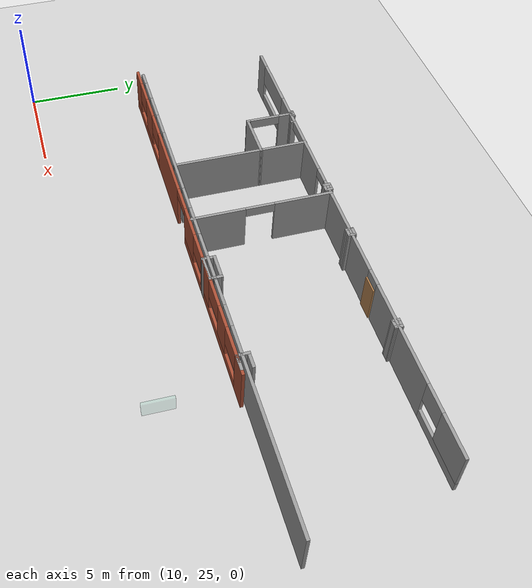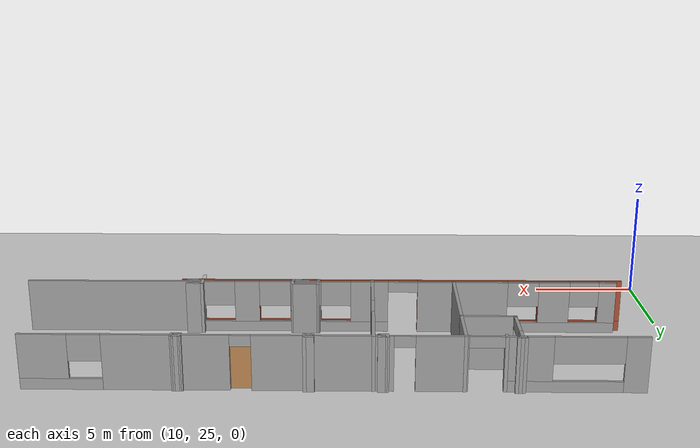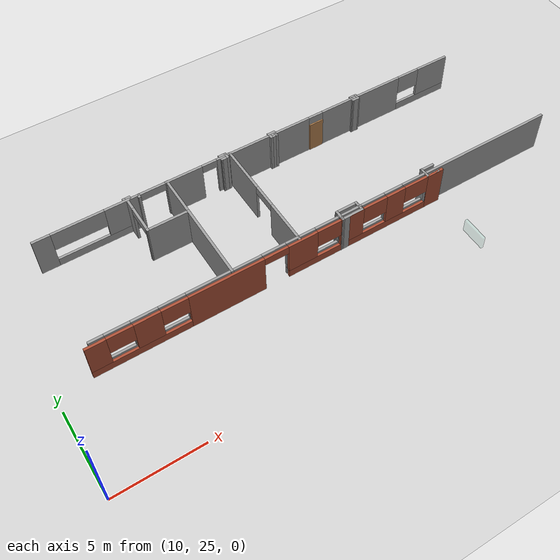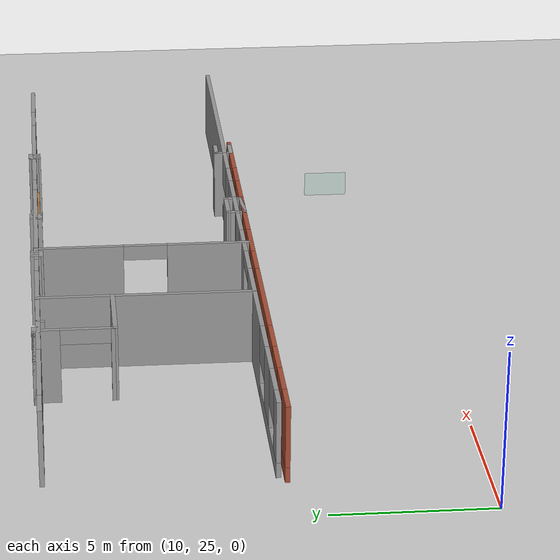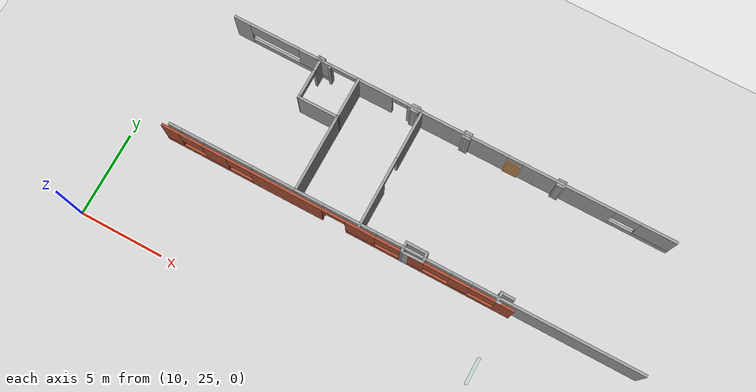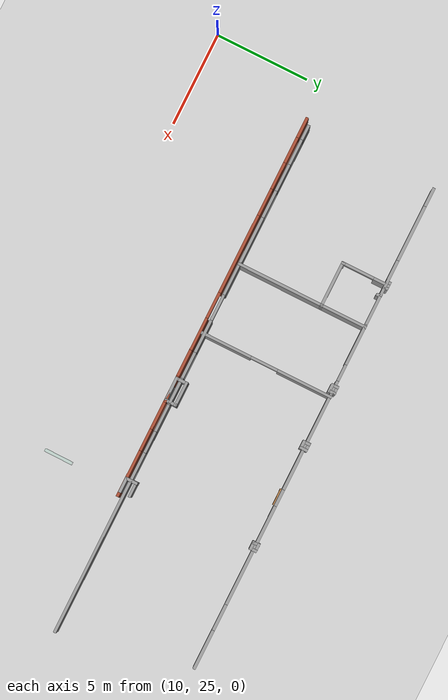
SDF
<sdf version="1.6">
 <world name="default">
  <model name="ground_plane">
   <static>1</static>
   <link name="link">
    <collision name="collision">
     <geometry><plane><normal>0 0 1</normal><size>100 100</size></plane></geometry>
     <surface><friction><ode><mu>100</mu><mu2>50</mu2></ode></friction></surface>
    </collision>
    <visual name="visual">
     <cast_shadows>0</cast_shadows>
     <geometry><plane><normal>0 0 1</normal><size>100 100</size></plane></geometry>
     <material>
      <script><uri>file://media/materials/scripts/gazebo.material</uri><name>Gazebo/Grey</name></script>
     </material>
    </visual>
   </link>
  </model>
  <model name="CVSSP">
   <pose>23.8714 24.094 0 0 -0 0</pose>
   <link name="Wall_0">
    <pose>1.68767 14.035 0 0 -0 0</pose>
    <visual name="Wall_0_Visual_0">
     <pose>-12.7386 0 1.25 0 -0 0</pose>
     <geometry><box><size>1.02282 0.15 2.5</size></box></geometry>
     <material>
      <script><uri>file://media/materials/scripts/gazebo.material</uri><name>Gazebo/Grey</name></script>
      <ambient>0.588235 0.588235 0.588235 1</ambient>
     </material>
    </visual>
    <collision name="Wall_0_Collision_0">
     <geometry><box><size>1.02282 0.15 2.5</size></box></geometry>
     <pose>-12.7386 0 1.25 0 -0 0</pose>
    </collision>
    <visual name="Wall_0_Visual_1">
     <pose>-4.58044 0 1.25 0 -0 0</pose>
     <geometry><box><size>2.22198 0.15 2.5</size></box></geometry>
     <material>
      <script><uri>file://media/materials/scripts/gazebo.material</uri><name>Gazebo/Grey</name></script>
      <ambient>0.588235 0.588235 0.588235 1</ambient>
     </material>
    </visual>
    <collision name="Wall_0_Collision_1">
     <geometry><box><size>2.22198 0.15 2.5</size></box></geometry>
     <pose>-4.58044 0 1.25 0 -0 0</pose>
    </collision>
    <visual name="Wall_0_Visual_2">
     <pose>0.426093 0 1.25 0 -0 0</pose>
     <geometry><box><size>5.99108 0.15 2.5</size></box></geometry>
     <material>
      <script><uri>file://media/materials/scripts/gazebo.material</uri><name>Gazebo/Grey</name></script>
      <ambient>0.588235 0.588235 0.588235 1</ambient>
     </material>
    </visual>
    <collision name="Wall_0_Collision_2">
     <geometry><box><size>5.99108 0.15 2.5</size></box></geometry>
     <pose>0.426093 0 1.25 0 -0 0</pose>
    </collision>
    <visual name="Wall_0_Visual_3">
     <pose>7.01875 0 1.25 0 -0 0</pose>
     <geometry><box><size>5.39422 0.15 2.5</size></box></geometry>
     <material>
      <script><uri>file://media/materials/scripts/gazebo.material</uri><name>Gazebo/Grey</name></script>
      <ambient>0.588235 0.588235 0.588235 1</ambient>
     </material>
    </visual>
    <collision name="Wall_0_Collision_3">
     <geometry><box><size>5.39422 0.15 2.5</size></box></geometry>
     <pose>7.01875 0 1.25 0 -0 0</pose>
    </collision>
    <visual name="Wall_0_Visual_4">
     <pose>-9.74161 0 0.25 0 -0 0</pose>
     <geometry><box><size>4.97113 0.15 0.5</size></box></geometry>
     <material>
      <script><uri>file://media/materials/scripts/gazebo.material</uri><name>Gazebo/Grey</name></script>
      <ambient>0.588235 0.588235 0.588235 1</ambient>
     </material>
    </visual>
    <collision name="Wall_0_Collision_4">
     <geometry><box><size>4.97113 0.15 0.5</size></box></geometry>
     <pose>-9.74161 0 0.25 0 -0 0</pose>
    </collision>
    <visual name="Wall_0_Visual_5">
     <pose>11.4829 0 0.25 0 -0 0</pose>
     <geometry><box><size>3.53415 0.15 0.5</size></box></geometry>
     <material>
      <script><uri>file://media/materials/scripts/gazebo.material</uri><name>Gazebo/Grey</name></script>
      <ambient>0.588235 0.588235 0.588235 1</ambient>
     </material>
    </visual>
    <collision name="Wall_0_Collision_5">
     <geometry><box><size>3.53415 0.15 0.5</size></box></geometry>
     <pose>11.4829 0 0.25 0 -0 0</pose>
    </collision>
    <visual name="Wall_0_Visual_6">
     <pose>-8.24385 0 1.5 0 -0 0</pose>
     <geometry><box><size>1.9756 0.15 2</size></box></geometry>
     <material>
      <script><uri>file://media/materials/scripts/gazebo.material</uri><name>Gazebo/Grey</name></script>
      <ambient>0.588235 0.588235 0.588235 1</ambient>
     </material>
    </visual>
    <collision name="Wall_0_Collision_6">
     <geometry><box><size>1.9756 0.15 2</size></box></geometry>
     <pose>-8.24385 0 1.5 0 -0 0</pose>
    </collision>
    <visual name="Wall_0_Visual_7">
     <pose>-8.24385 0 1.5 0 -0 0</pose>
     <geometry><box><size>1.9756 0.15 2</size></box></geometry>
     <material>
      <script><uri>file://media/materials/scripts/gazebo.material</uri><name>Gazebo/Grey</name></script>
      <ambient>0.588235 0.588235 0.588235 1</ambient>
     </material>
    </visual>
    <collision name="Wall_0_Collision_7">
     <geometry><box><size>1.9756 0.15 2</size></box></geometry>
     <pose>-8.24385 0 1.5 0 -0 0</pose>
    </collision>
    <visual name="Wall_0_Visual_8">
     <pose>12.1924 0 1.5 0 -0 0</pose>
     <geometry><box><size>2.11511 0.15 2</size></box></geometry>
     <material>
      <script><uri>file://media/materials/scripts/gazebo.material</uri><name>Gazebo/Grey</name></script>
      <ambient>0.588235 0.588235 0.588235 1</ambient>
     </material>
    </visual>
    <collision name="Wall_0_Collision_8">
     <geometry><box><size>2.11511 0.15 2</size></box></geometry>
     <pose>12.1924 0 1.5 0 -0 0</pose>
    </collision>
    <visual name="Wall_0_Visual_9">
     <pose>-10.7294 0 1.9 0 -0 0</pose>
     <geometry><box><size>2.99553 0.15 1.2</size></box></geometry>
     <material>
      <script><uri>file://media/materials/scripts/gazebo.material</uri><name>Gazebo/Grey</name></script>
      <ambient>0.588235 0.588235 0.588235 1</ambient>
     </material>
    </visual>
    <collision name="Wall_0_Collision_9">
     <geometry><box><size>2.99553 0.15 1.2</size></box></geometry>
     <pose>-10.7294 0 1.9 0 -0 0</pose>
    </collision>
    <visual name="Wall_0_Visual_10">
     <pose>10.4254 0 1.9 0 -0 0</pose>
     <geometry><box><size>1.41904 0.15 1.2</size></box></geometry>
     <material>
      <script><uri>file://media/materials/scripts/gazebo.material</uri><name>Gazebo/Grey</name></script>
      <ambient>0.588235 0.588235 0.588235 1</ambient>
     </material>
    </visual>
    <collision name="Wall_0_Collision_10">
     <geometry><box><size>1.41904 0.15 1.2</size></box></geometry>
     <pose>10.4254 0 1.9 0 -0 0</pose>
    </collision>
    <visual name="Wall_0_Visual_11">
     <pose>-3.01945 0 2.25 0 -0 0</pose>
     <geometry><box><size>0.9 0.15 0.5</size></box></geometry>
     <material>
      <script><uri>file://media/materials/scripts/gazebo.material</uri><name>Gazebo/Grey</name></script>
      <ambient>0.588235 0.588235 0.588235 1</ambient>
     </material>
    </visual>
    <collision name="Wall_0_Collision_11">
     <geometry><box><size>0.9 0.15 0.5</size></box></geometry>
     <pose>-3.01945 0 2.25 0 -0 0</pose>
    </collision>
    <visual name="Wall_0_Visual_12">
     <pose>3.87163 0 2.25 0 -0 0</pose>
     <geometry><box><size>0.9 0.15 0.5</size></box></geometry>
     <material>
      <script><uri>file://media/materials/scripts/gazebo.material</uri><name>Gazebo/Grey</name></script>
      <ambient>0.588235 0.588235 0.588235 1</ambient>
     </material>
    </visual>
    <collision name="Wall_0_Collision_12">
     <geometry><box><size>0.9 0.15 0.5</size></box></geometry>
     <pose>3.87163 0 2.25 0 -0 0</pose>
    </collision>
    <visual name="Wall_0_Visual_13">
     <pose>-6.47374 0 2.25 0 -0 0</pose>
     <geometry><box><size>1.56462 0.15 0.5</size></box></geometry>
     <material>
      <script><uri>file://media/materials/scripts/gazebo.material</uri><name>Gazebo/Grey</name></script>
      <ambient>0.588235 0.588235 0.588235 1</ambient>
     </material>
    </visual>
    <collision name="Wall_0_Collision_13">
     <geometry><box><size>1.56462 0.15 0.5</size></box></geometry>
     <pose>-6.47374 0 2.25 0 -0 0</pose>
    </collision>
    <visual name="Wall_0_Visual_14">
     <pose>-6.47374 0 2.25 0 -0 0</pose>
     <geometry><box><size>1.56462 0.15 0.5</size></box></geometry>
     <material>
      <script><uri>file://media/materials/scripts/gazebo.material</uri><name>Gazebo/Grey</name></script>
      <ambient>0.588235 0.588235 0.588235 1</ambient>
     </material>
    </visual>
    <collision name="Wall_0_Collision_14">
     <geometry><box><size>1.56462 0.15 0.5</size></box></geometry>
     <pose>-6.47374 0 2.25 0 -0 0</pose>
    </collision>
   </link>
   <link name="Wall_19">
    <pose>2.41083 7.10891 0 0 -0 3.14159</pose>
    <visual name="Wall_19_Visual_0">
     <pose>-9.80896 0 1.25 0 -0 0</pose>
     <geometry><box><size>8.38208 0.15 2.5</size></box></geometry>
     <material>
      <script><uri>file://media/materials/scripts/gazebo.material</uri><name>Gazebo/Grey</name></script>
      <ambient>0.588235 0.588235 0.588235 1</ambient>
     </material>
    </visual>
    <collision name="Wall_19_Collision_0">
     <geometry><box><size>8.38208 0.15 2.5</size></box></geometry>
     <pose>-9.80896 0 1.25 0 -0 0</pose>
    </collision>
    <visual name="Wall_19_Visual_1">
     <pose>6.72902 0 1.25 0 -0 0</pose>
     <geometry><box><size>4.28675 0.15 2.5</size></box></geometry>
     <material>
      <script><uri>file://media/materials/scripts/gazebo.material</uri><name>Gazebo/Grey</name></script>
      <ambient>0.588235 0.588235 0.588235 1</ambient>
     </material>
    </visual>
    <collision name="Wall_19_Collision_1">
     <geometry><box><size>4.28675 0.15 2.5</size></box></geometry>
     <pose>6.72902 0 1.25 0 -0 0</pose>
    </collision>
    <visual name="Wall_19_Visual_2">
     <pose>-1.21771 0 0.25 0 -0 0</pose>
     <geometry><box><size>8.80043 0.15 0.5</size></box></geometry>
     <material>
      <script><uri>file://media/materials/scripts/gazebo.material</uri><name>Gazebo/Grey</name></script>
      <ambient>0.588235 0.588235 0.588235 1</ambient>
     </material>
    </visual>
    <collision name="Wall_19_Collision_2">
     <geometry><box><size>8.80043 0.15 0.5</size></box></geometry>
     <pose>-1.21771 0 0.25 0 -0 0</pose>
    </collision>
    <visual name="Wall_19_Visual_3">
     <pose>11.4362 0 0.25 0 -0 0</pose>
     <geometry><box><size>5.1276 0.15 0.5</size></box></geometry>
     <material>
      <script><uri>file://media/materials/scripts/gazebo.material</uri><name>Gazebo/Grey</name></script>
      <ambient>0.588235 0.588235 0.588235 1</ambient>
     </material>
    </visual>
    <collision name="Wall_19_Collision_3">
     <geometry><box><size>5.1276 0.15 0.5</size></box></geometry>
     <pose>11.4362 0 0.25 0 -0 0</pose>
    </collision>
    <visual name="Wall_19_Visual_4">
     <pose>-3.53944 0 1.5 0 -0 0</pose>
     <geometry><box><size>1.17771 0.15 2</size></box></geometry>
     <material>
      <script><uri>file://media/materials/scripts/gazebo.material</uri><name>Gazebo/Grey</name></script>
      <ambient>0.588235 0.588235 0.588235 1</ambient>
     </material>
    </visual>
    <collision name="Wall_19_Collision_4">
     <geometry><box><size>1.17771 0.15 2</size></box></geometry>
     <pose>-3.53944 0 1.5 0 -0 0</pose>
    </collision>
    <visual name="Wall_19_Visual_5">
     <pose>-0.741003 0 1.5 0 -0 0</pose>
     <geometry><box><size>1.46268 0.15 2</size></box></geometry>
     <material>
      <script><uri>file://media/materials/scripts/gazebo.material</uri><name>Gazebo/Grey</name></script>
      <ambient>0.588235 0.588235 0.588235 1</ambient>
     </material>
    </visual>
    <collision name="Wall_19_Collision_5">
     <geometry><box><size>1.46268 0.15 2</size></box></geometry>
     <pose>-0.741003 0 1.5 0 -0 0</pose>
    </collision>
    <visual name="Wall_19_Visual_6">
     <pose>2.29704 0 1.5 0 -0 0</pose>
     <geometry><box><size>1.77092 0.15 2</size></box></geometry>
     <material>
      <script><uri>file://media/materials/scripts/gazebo.material</uri><name>Gazebo/Grey</name></script>
      <ambient>0.588235 0.588235 0.588235 1</ambient>
     </material>
    </visual>
    <collision name="Wall_19_Collision_6">
     <geometry><box><size>1.77092 0.15 2</size></box></geometry>
     <pose>2.29704 0 1.5 0 -0 0</pose>
    </collision>
    <visual name="Wall_19_Visual_7">
     <pose>2.29704 0 1.5 0 -0 0</pose>
     <geometry><box><size>1.77092 0.15 2</size></box></geometry>
     <material>
      <script><uri>file://media/materials/scripts/gazebo.material</uri><name>Gazebo/Grey</name></script>
      <ambient>0.588235 0.588235 0.588235 1</ambient>
     </material>
    </visual>
    <collision name="Wall_19_Collision_7">
     <geometry><box><size>1.77092 0.15 2</size></box></geometry>
     <pose>2.29704 0 1.5 0 -0 0</pose>
    </collision>
    <visual name="Wall_19_Visual_8">
     <pose>11.0786 0 1.5 0 -0 0</pose>
     <geometry><box><size>1.46509 0.15 2</size></box></geometry>
     <material>
      <script><uri>file://media/materials/scripts/gazebo.material</uri><name>Gazebo/Grey</name></script>
      <ambient>0.588235 0.588235 0.588235 1</ambient>
     </material>
    </visual>
    <collision name="Wall_19_Collision_8">
     <geometry><box><size>1.46509 0.15 2</size></box></geometry>
     <pose>11.0786 0 1.5 0 -0 0</pose>
    </collision>
    <visual name="Wall_19_Visual_9">
     <pose>13.5916 0 1.5 0 -0 0</pose>
     <geometry><box><size>0.816793 0.15 2</size></box></geometry>
     <material>
      <script><uri>file://media/materials/scripts/gazebo.material</uri><name>Gazebo/Grey</name></script>
      <ambient>0.588235 0.588235 0.588235 1</ambient>
     </material>
    </visual>
    <collision name="Wall_19_Collision_9">
     <geometry><box><size>0.816793 0.15 2</size></box></geometry>
     <pose>13.5916 0 1.5 0 -0 0</pose>
    </collision>
    <visual name="Wall_19_Visual_10">
     <pose>-4.87311 0 1.9 0 -0 0</pose>
     <geometry><box><size>1.48963 0.15 1.2</size></box></geometry>
     <material>
      <script><uri>file://media/materials/scripts/gazebo.material</uri><name>Gazebo/Grey</name></script>
      <ambient>0.588235 0.588235 0.588235 1</ambient>
     </material>
    </visual>
    <collision name="Wall_19_Collision_10">
     <geometry><box><size>1.48963 0.15 1.2</size></box></geometry>
     <pose>-4.87311 0 1.9 0 -0 0</pose>
    </collision>
    <visual name="Wall_19_Visual_11">
     <pose>9.60921 0 1.9 0 -0 0</pose>
     <geometry><box><size>1.47362 0.15 1.2</size></box></geometry>
     <material>
      <script><uri>file://media/materials/scripts/gazebo.material</uri><name>Gazebo/Grey</name></script>
      <ambient>0.588235 0.588235 0.588235 1</ambient>
     </material>
    </visual>
    <collision name="Wall_19_Collision_11">
     <geometry><box><size>1.47362 0.15 1.2</size></box></geometry>
     <pose>9.60921 0 1.9 0 -0 0</pose>
    </collision>
    <visual name="Wall_19_Visual_12">
     <pose>-2.21146 0 1.9 0 -0 0</pose>
     <geometry><box><size>1.47823 0.15 1.2</size></box></geometry>
     <material>
      <script><uri>file://media/materials/scripts/gazebo.material</uri><name>Gazebo/Grey</name></script>
      <ambient>0.588235 0.588235 0.588235 1</ambient>
     </material>
    </visual>
    <collision name="Wall_19_Collision_12">
     <geometry><box><size>1.47823 0.15 1.2</size></box></geometry>
     <pose>-2.21146 0 1.9 0 -0 0</pose>
    </collision>
    <visual name="Wall_19_Visual_13">
     <pose>0.700959 0 1.9 0 -0 0</pose>
     <geometry><box><size>1.42124 0.15 1.2</size></box></geometry>
     <material>
      <script><uri>file://media/materials/scripts/gazebo.material</uri><name>Gazebo/Grey</name></script>
      <ambient>0.588235 0.588235 0.588235 1</ambient>
     </material>
    </visual>
    <collision name="Wall_19_Collision_13">
     <geometry><box><size>1.42124 0.15 1.2</size></box></geometry>
     <pose>0.700959 0 1.9 0 -0 0</pose>
    </collision>
    <visual name="Wall_19_Visual_14">
     <pose>12.4972 0 1.9 0 -0 0</pose>
     <geometry><box><size>1.3721 0.15 1.2</size></box></geometry>
     <material>
      <script><uri>file://media/materials/scripts/gazebo.material</uri><name>Gazebo/Grey</name></script>
      <ambient>0.588235 0.588235 0.588235 1</ambient>
     </material>
    </visual>
    <collision name="Wall_19_Collision_14">
     <geometry><box><size>1.3721 0.15 1.2</size></box></geometry>
     <pose>12.4972 0 1.9 0 -0 0</pose>
    </collision>
    <visual name="Wall_19_Visual_15">
     <pose>3.88408 0 2.25 0 -0 0</pose>
     <geometry><box><size>1.40314 0.15 0.5</size></box></geometry>
     <material>
      <script><uri>file://media/materials/scripts/gazebo.material</uri><name>Gazebo/Grey</name></script>
      <ambient>0.588235 0.588235 0.588235 1</ambient>
     </material>
    </visual>
    <collision name="Wall_19_Collision_15">
     <geometry><box><size>1.40314 0.15 0.5</size></box></geometry>
     <pose>3.88408 0 2.25 0 -0 0</pose>
    </collision>
    <visual name="Wall_19_Visual_16">
     <pose>3.88408 0 2.25 0 -0 0</pose>
     <geometry><box><size>1.40314 0.15 0.5</size></box></geometry>
     <material>
      <script><uri>file://media/materials/scripts/gazebo.material</uri><name>Gazebo/Grey</name></script>
      <ambient>0.588235 0.588235 0.588235 1</ambient>
     </material>
    </visual>
    <collision name="Wall_19_Collision_16">
     <geometry><box><size>1.40314 0.15 0.5</size></box></geometry>
     <pose>3.88408 0 2.25 0 -0 0</pose>
    </collision>
   </link>
   <link name="Wall_21">
    <pose>-6.21845 12.8269 0 0 0 -1.57055</pose>
    <visual name="Wall_21_Visual_0">
     <pose>-0.893143 0 1.25 0 -0 0</pose>
     <geometry><box><size>0.719046 0.15 2.5</size></box></geometry>
     <material>
      <script><uri>file://media/materials/scripts/gazebo.material</uri><name>Gazebo/Grey</name></script>
      <ambient>0.588235 0.588235 0.588235 1</ambient>
     </material>
    </visual>
    <collision name="Wall_21_Collision_0">
     <geometry><box><size>0.719046 0.15 2.5</size></box></geometry>
     <pose>-0.893143 0 1.25 0 -0 0</pose>
    </collision>
    <visual name="Wall_21_Visual_1">
     <pose>1.15058 0 1.25 0 -0 0</pose>
     <geometry><box><size>0.204165 0.15 2.5</size></box></geometry>
     <material>
      <script><uri>file://media/materials/scripts/gazebo.material</uri><name>Gazebo/Grey</name></script>
      <ambient>0.588235 0.588235 0.588235 1</ambient>
     </material>
    </visual>
    <collision name="Wall_21_Collision_1">
     <geometry><box><size>0.204165 0.15 2.5</size></box></geometry>
     <pose>1.15058 0 1.25 0 -0 0</pose>
    </collision>
    <visual name="Wall_21_Visual_2">
     <pose>0.257441 0 2.25 0 -0 0</pose>
     <geometry><box><size>1.58212 0.15 0.5</size></box></geometry>
     <material>
      <script><uri>file://media/materials/scripts/gazebo.material</uri><name>Gazebo/Grey</name></script>
      <ambient>0.588235 0.588235 0.588235 1</ambient>
     </material>
    </visual>
    <collision name="Wall_21_Collision_2">
     <geometry><box><size>1.58212 0.15 0.5</size></box></geometry>
     <pose>0.257441 0 2.25 0 -0 0</pose>
    </collision>
   </link>
   <link name="Wall_24">
    <collision name="Wall_24_Collision">
     <geometry><box><size>2.49412 0.15 2.5</size></box></geometry>
     <pose>0 0 1.25 0 -0 0</pose>
    </collision>
    <visual name="Wall_24_Visual">
     <pose>0 0 1.25 0 -0 0</pose>
     <geometry><box><size>2.49412 0.15 2.5</size></box></geometry>
     <material>
      <script><uri>file://media/materials/scripts/gazebo.material</uri><name>Gazebo/Grey</name></script>
      <ambient>0.588235 0.588235 0.588235 1</ambient>
     </material>
    </visual>
    <pose>-5.0461 11.6485 0 0 0 -0.000618</pose>
   </link>
   <link name="Wall_25">
    <collision name="Wall_25_Collision">
     <geometry><box><size>2.54698 0.15 2.5</size></box></geometry>
     <pose>0 0 1.25 0 -0 0</pose>
    </collision>
    <visual name="Wall_25_Visual">
     <pose>0 0 1.25 0 -0 0</pose>
     <geometry><box><size>2.54698 0.15 2.5</size></box></geometry>
     <material>
      <script><uri>file://media/materials/scripts/gazebo.material</uri><name>Gazebo/Grey</name></script>
      <ambient>0.588235 0.588235 0.588235 1</ambient>
     </material>
    </visual>
    <pose>-3.87405 12.8463 0 0 -0 1.5708</pose>
   </link>
   <link name="Wall_27">
    <collision name="Wall_27_Collision">
     <geometry><box><size>4.69046 0.15 2.5</size></box></geometry>
     <pose>0 0 1.25 0 -0 0</pose>
    </collision>
    <visual name="Wall_27_Visual">
     <pose>0 0 1.25 0 -0 0</pose>
     <geometry><box><size>4.69046 0.15 2.5</size></box></geometry>
     <material>
      <script><uri>file://media/materials/scripts/gazebo.material</uri><name>Gazebo/Grey</name></script>
      <ambient>0.588235 0.588235 0.588235 1</ambient>
     </material>
    </visual>
    <pose>-3.88025 9.37755 0 0 0 -1.57353</pose>
   </link>
   <link name="Wall_29">
    <pose>-0.023055 10.5087 0 0 0 -1.5708</pose>
    <visual name="Wall_29_Visual_0">
     <pose>-2.1277 0 1.25 0 -0 0</pose>
     <geometry><box><size>2.99461 0.15 2.5</size></box></geometry>
     <material>
      <script><uri>file://media/materials/scripts/gazebo.material</uri><name>Gazebo/Grey</name></script>
      <ambient>0.588235 0.588235 0.588235 1</ambient>
     </material>
    </visual>
    <collision name="Wall_29_Collision_0">
     <geometry><box><size>2.99461 0.15 2.5</size></box></geometry>
     <pose>-2.1277 0 1.25 0 -0 0</pose>
    </collision>
    <visual name="Wall_29_Visual_1">
     <pose>2.22714 0 1.25 0 -0 0</pose>
     <geometry><box><size>2.79571 0.15 2.5</size></box></geometry>
     <material>
      <script><uri>file://media/materials/scripts/gazebo.material</uri><name>Gazebo/Grey</name></script>
      <ambient>0.588235 0.588235 0.588235 1</ambient>
     </material>
    </visual>
    <collision name="Wall_29_Collision_1">
     <geometry><box><size>2.79571 0.15 2.5</size></box></geometry>
     <pose>2.22714 0 1.25 0 -0 0</pose>
    </collision>
    <visual name="Wall_29_Visual_2">
     <pose>0.099447 0 2.25 0 -0 0</pose>
     <geometry><box><size>1.45968 0.15 0.5</size></box></geometry>
     <material>
      <script><uri>file://media/materials/scripts/gazebo.material</uri><name>Gazebo/Grey</name></script>
      <ambient>0.588235 0.588235 0.588235 1</ambient>
     </material>
    </visual>
    <collision name="Wall_29_Collision_2">
     <geometry><box><size>1.45968 0.15 0.5</size></box></geometry>
     <pose>0.099447 0 2.25 0 -0 0</pose>
    </collision>
   </link>
   <link name="Wall_32">
    <collision name="Wall_32_Collision">
     <geometry><box><size>0.5 0.15 2.5</size></box></geometry>
     <pose>0 0 1.25 0 -0 0</pose>
    </collision>
    <visual name="Wall_32_Visual">
     <pose>0 0 1.25 0 -0 0</pose>
     <geometry><box><size>0.5 0.15 2.5</size></box></geometry>
     <material>
      <script><uri>file://media/materials/scripts/gazebo.material</uri><name>Gazebo/Grey</name></script>
      <ambient>1 1 1 1</ambient>
     </material>
    </visual>
    <pose>2.55582 7.23766 0 0 -0 1.5708</pose>
   </link>
   <link name="Wall_33">
    <collision name="Wall_33_Collision">
     <geometry><box><size>1.35002 0.15 2.5</size></box></geometry>
     <pose>0 0 1.25 0 -0 0</pose>
    </collision>
    <visual name="Wall_33_Visual">
     <pose>0 0 1.25 0 -0 0</pose>
     <geometry><box><size>1.35002 0.15 2.5</size></box></geometry>
     <material>
      <script><uri>file://media/materials/scripts/gazebo.material</uri><name>Gazebo/Grey</name></script>
      <ambient>1 1 1 1</ambient>
     </material>
    </visual>
    <pose>3.15583 7.41134 0 0 0 -0.002197</pose>
   </link>
   <link name="Wall_34">
    <collision name="Wall_34_Collision">
     <geometry><box><size>0.477081 0.15 2.5</size></box></geometry>
     <pose>0 0 1.25 0 -0 0</pose>
    </collision>
    <visual name="Wall_34_Visual">
     <pose>0 0 1.25 0 -0 0</pose>
     <geometry><box><size>0.477081 0.15 2.5</size></box></geometry>
     <material>
      <script><uri>file://media/materials/scripts/gazebo.material</uri><name>Gazebo/Grey</name></script>
      <ambient>1 1 1 1</ambient>
     </material>
    </visual>
    <pose>3.75756 7.24649 0 0 0 -1.56021</pose>
   </link>
   <link name="Wall_35">
    <collision name="Wall_35_Collision">
     <geometry><box><size>0.362174 0.15 2.5</size></box></geometry>
     <pose>0 0 1.25 0 -0 0</pose>
    </collision>
    <visual name="Wall_35_Visual">
     <pose>0 0 1.25 0 -0 0</pose>
     <geometry><box><size>0.362174 0.15 2.5</size></box></geometry>
     <material>
      <script><uri>file://media/materials/scripts/gazebo.material</uri><name>Gazebo/Grey</name></script>
      <ambient>1 1 1 1</ambient>
     </material>
    </visual>
    <pose>3.75517 6.99018 0 0 0 -1.6097</pose>
   </link>
   <link name="Wall_36">
    <collision name="Wall_36_Collision">
     <geometry><box><size>1.34683 0.15 2.5</size></box></geometry>
     <pose>0 0 1.25 0 -0 0</pose>
    </collision>
    <visual name="Wall_36_Visual">
     <pose>0 0 1.25 0 -0 0</pose>
     <geometry><box><size>1.34683 0.15 2.5</size></box></geometry>
     <material>
      <script><uri>file://media/materials/scripts/gazebo.material</uri><name>Gazebo/Grey</name></script>
      <ambient>1 1 1 1</ambient>
     </material>
    </visual>
    <pose>3.15268 6.87142 0 0 0 -3.1286</pose>
   </link>
   <link name="Wall_37">
    <collision name="Wall_37_Collision">
     <geometry><box><size>0.15 0.15 2.5</size></box></geometry>
     <pose>0 0 1.25 0 -0 0</pose>
    </collision>
    <visual name="Wall_37_Visual">
     <pose>0 0 1.25 0 -0 0</pose>
     <geometry><box><size>0.15 0.15 2.5</size></box></geometry>
     <material>
      <script><uri>file://media/materials/scripts/gazebo.material</uri><name>Gazebo/Grey</name></script>
      <ambient>1 1 1 1</ambient>
     </material>
    </visual>
    <pose>2.55431 6.86365 0 0 -0 0</pose>
   </link>
   <link name="Wall_38">
    <collision name="Wall_38_Collision">
     <geometry><box><size>0.258168 0.15 2.5</size></box></geometry>
     <pose>0 0 1.25 0 -0 0</pose>
    </collision>
    <visual name="Wall_38_Visual">
     <pose>0 0 1.25 0 -0 0</pose>
     <geometry><box><size>0.258168 0.15 2.5</size></box></geometry>
     <material>
      <script><uri>file://media/materials/scripts/gazebo.material</uri><name>Gazebo/Grey</name></script>
      <ambient>1 1 1 1</ambient>
     </material>
    </visual>
    <pose>2.55648 6.91769 0 0 -0 1.61078</pose>
   </link>
   <link name="Wall_40">
    <collision name="Wall_40_Collision">
     <geometry><box><size>0.82 0.15 2.5</size></box></geometry>
     <pose>0 0 1.25 0 -0 0</pose>
    </collision>
    <visual name="Wall_40_Visual">
     <pose>0 0 1.25 0 -0 0</pose>
     <geometry><box><size>0.82 0.15 2.5</size></box></geometry>
     <material>
      <script><uri>file://media/materials/scripts/gazebo.material</uri><name>Gazebo/Grey</name></script>
      <ambient>1 1 1 1</ambient>
     </material>
    </visual>
    <pose>8.4225 7.39869 0 0 -0 0</pose>
   </link>
   <link name="Wall_42">
    <collision name="Wall_42_Collision">
     <geometry><box><size>0.84 0.15 2.5</size></box></geometry>
     <pose>0 0 1.25 0 -0 0</pose>
    </collision>
    <visual name="Wall_42_Visual">
     <pose>0 0 1.25 0 -0 0</pose>
     <geometry><box><size>0.84 0.15 2.5</size></box></geometry>
     <material>
      <script><uri>file://media/materials/scripts/gazebo.material</uri><name>Gazebo/Grey</name></script>
      <ambient>1 1 1 1</ambient>
     </material>
    </visual>
    <pose>8.4125 6.87868 0 0 -0 3.14159</pose>
   </link>
   <link name="Wall_43">
    <collision name="Wall_43_Collision">
     <geometry><box><size>0.68 0.15 2.5</size></box></geometry>
     <pose>0 0 1.25 0 -0 0</pose>
    </collision>
    <visual name="Wall_43_Visual">
     <pose>0 0 1.25 0 -0 0</pose>
     <geometry><box><size>0.68 0.15 2.5</size></box></geometry>
     <material>
      <script><uri>file://media/materials/scripts/gazebo.material</uri><name>Gazebo/Grey</name></script>
      <ambient>1 1 1 1</ambient>
     </material>
    </visual>
    <pose>8.0675 7.14368 0 0 -0 1.5708</pose>
   </link>
   <link name="Wall_46">
    <pose>-1.40579 6.86917 0 0 -0 3.14155</pose>
    <visual name="Wall_46_Visual_0">
     <pose>-9.95927 0 1.25 0 -0 0</pose>
     <geometry><box><size>1.03804 0.15 2.5</size></box></geometry>
     <material>
      <script><uri>file://media/materials/scripts/gazebo.material</uri><name>Gazebo/Bricks</name></script>
      <ambient>1 1 1 1</ambient>
     </material>
    </visual>
    <collision name="Wall_46_Collision_0">
     <geometry><box><size>1.03804 0.15 2.5</size></box></geometry>
     <pose>-9.95927 0 1.25 0 -0 0</pose>
    </collision>
    <visual name="Wall_46_Visual_1">
     <pose>2.91124 0 1.25 0 -0 0</pose>
     <geometry><box><size>4.28444 0.15 2.5</size></box></geometry>
     <material>
      <script><uri>file://media/materials/scripts/gazebo.material</uri><name>Gazebo/Bricks</name></script>
      <ambient>1 1 1 1</ambient>
     </material>
    </visual>
    <collision name="Wall_46_Collision_1">
     <geometry><box><size>4.28444 0.15 2.5</size></box></geometry>
     <pose>2.91124 0 1.25 0 -0 0</pose>
    </collision>
    <visual name="Wall_46_Visual_2">
     <pose>-5.03718 0 0.25 0 -0 0</pose>
     <geometry><box><size>8.80612 0.15 0.5</size></box></geometry>
     <material>
      <script><uri>file://media/materials/scripts/gazebo.material</uri><name>Gazebo/Bricks</name></script>
      <ambient>1 1 1 1</ambient>
     </material>
    </visual>
    <collision name="Wall_46_Collision_2">
     <geometry><box><size>8.80612 0.15 0.5</size></box></geometry>
     <pose>-5.03718 0 0.25 0 -0 0</pose>
    </collision>
    <visual name="Wall_46_Visual_3">
     <pose>7.76588 0 0.25 0 -0 0</pose>
     <geometry><box><size>5.42482 0.15 0.5</size></box></geometry>
     <material>
      <script><uri>file://media/materials/scripts/gazebo.material</uri><name>Gazebo/Bricks</name></script>
      <ambient>1 1 1 1</ambient>
     </material>
    </visual>
    <collision name="Wall_46_Collision_3">
     <geometry><box><size>5.42482 0.15 0.5</size></box></geometry>
     <pose>7.76588 0 0.25 0 -0 0</pose>
    </collision>
    <visual name="Wall_46_Visual_4">
     <pose>-7.35036 0 1.5 0 -0 0</pose>
     <geometry><box><size>1.1891 0.15 2</size></box></geometry>
     <material>
      <script><uri>file://media/materials/scripts/gazebo.material</uri><name>Gazebo/Bricks</name></script>
      <ambient>1 1 1 1</ambient>
     </material>
    </visual>
    <collision name="Wall_46_Collision_4">
     <geometry><box><size>1.1891 0.15 2</size></box></geometry>
     <pose>-7.35036 0 1.5 0 -0 0</pose>
    </collision>
    <visual name="Wall_46_Visual_5">
     <pose>-4.55193 0 1.5 0 -0 0</pose>
     <geometry><box><size>1.43988 0.15 2</size></box></geometry>
     <material>
      <script><uri>file://media/materials/scripts/gazebo.material</uri><name>Gazebo/Bricks</name></script>
      <ambient>1 1 1 1</ambient>
     </material>
    </visual>
    <collision name="Wall_46_Collision_5">
     <geometry><box><size>1.43988 0.15 2</size></box></geometry>
     <pose>-4.55193 0 1.5 0 -0 0</pose>
    </collision>
    <visual name="Wall_46_Visual_6">
     <pose>-1.51388 0 1.5 0 -0 0</pose>
     <geometry><box><size>1.75953 0.15 2</size></box></geometry>
     <material>
      <script><uri>file://media/materials/scripts/gazebo.material</uri><name>Gazebo/Bricks</name></script>
      <ambient>1 1 1 1</ambient>
     </material>
    </visual>
    <collision name="Wall_46_Collision_6">
     <geometry><box><size>1.75953 0.15 2</size></box></geometry>
     <pose>-1.51388 0 1.5 0 -0 0</pose>
    </collision>
    <visual name="Wall_46_Visual_7">
     <pose>-1.51388 0 1.5 0 -0 0</pose>
     <geometry><box><size>1.75953 0.15 2</size></box></geometry>
     <material>
      <script><uri>file://media/materials/scripts/gazebo.material</uri><name>Gazebo/Bricks</name></script>
      <ambient>1 1 1 1</ambient>
     </material>
    </visual>
    <collision name="Wall_46_Collision_7">
     <geometry><box><size>1.75953 0.15 2</size></box></geometry>
     <pose>-1.51388 0 1.5 0 -0 0</pose>
    </collision>
    <visual name="Wall_46_Visual_8">
     <pose>7.24439 0 1.5 0 -0 0</pose>
     <geometry><box><size>1.44818 0.15 2</size></box></geometry>
     <material>
      <script><uri>file://media/materials/scripts/gazebo.material</uri><name>Gazebo/Bricks</name></script>
      <ambient>1 1 1 1</ambient>
     </material>
    </visual>
    <collision name="Wall_46_Collision_8">
     <geometry><box><size>1.44818 0.15 2</size></box></geometry>
     <pose>7.24439 0 1.5 0 -0 0</pose>
    </collision>
    <visual name="Wall_46_Visual_9">
     <pose>9.92244 0 1.5 0 -0 0</pose>
     <geometry><box><size>1.1117 0.15 2</size></box></geometry>
     <material>
      <script><uri>file://media/materials/scripts/gazebo.material</uri><name>Gazebo/Bricks</name></script>
      <ambient>1 1 1 1</ambient>
     </material>
    </visual>
    <collision name="Wall_46_Collision_9">
     <geometry><box><size>1.1117 0.15 2</size></box></geometry>
     <pose>9.92244 0 1.5 0 -0 0</pose>
    </collision>
    <visual name="Wall_46_Visual_10">
     <pose>-8.69258 0 1.9 0 -0 0</pose>
     <geometry><box><size>1.49533 0.15 1.2</size></box></geometry>
     <material>
      <script><uri>file://media/materials/scripts/gazebo.material</uri><name>Gazebo/Bricks</name></script>
      <ambient>1 1 1 1</ambient>
     </material>
    </visual>
    <collision name="Wall_46_Collision_10">
     <geometry><box><size>1.49533 0.15 1.2</size></box></geometry>
     <pose>-8.69258 0 1.9 0 -0 0</pose>
    </collision>
    <visual name="Wall_46_Visual_11">
     <pose>5.78688 0 1.9 0 -0 0</pose>
     <geometry><box><size>1.46684 0.15 1.2</size></box></geometry>
     <material>
      <script><uri>file://media/materials/scripts/gazebo.material</uri><name>Gazebo/Bricks</name></script>
      <ambient>1 1 1 1</ambient>
     </material>
    </visual>
    <collision name="Wall_46_Collision_11">
     <geometry><box><size>1.46684 0.15 1.2</size></box></geometry>
     <pose>5.78688 0 1.9 0 -0 0</pose>
    </collision>
    <visual name="Wall_46_Visual_12">
     <pose>-6.01384 0 1.9 0 -0 0</pose>
     <geometry><box><size>1.48394 0.15 1.2</size></box></geometry>
     <material>
      <script><uri>file://media/materials/scripts/gazebo.material</uri><name>Gazebo/Bricks</name></script>
      <ambient>1 1 1 1</ambient>
     </material>
    </visual>
    <collision name="Wall_46_Collision_12">
     <geometry><box><size>1.48394 0.15 1.2</size></box></geometry>
     <pose>-6.01384 0 1.9 0 -0 0</pose>
    </collision>
    <visual name="Wall_46_Visual_13">
     <pose>-3.11282 0 1.9 0 -0 0</pose>
     <geometry><box><size>1.43834 0.15 1.2</size></box></geometry>
     <material>
      <script><uri>file://media/materials/scripts/gazebo.material</uri><name>Gazebo/Bricks</name></script>
      <ambient>1 1 1 1</ambient>
     </material>
    </visual>
    <collision name="Wall_46_Collision_13">
     <geometry><box><size>1.43834 0.15 1.2</size></box></geometry>
     <pose>-3.11282 0 1.9 0 -0 0</pose>
    </collision>
    <visual name="Wall_46_Visual_14">
     <pose>8.66753 0 1.9 0 -0 0</pose>
     <geometry><box><size>1.39811 0.15 1.2</size></box></geometry>
     <material>
      <script><uri>file://media/materials/scripts/gazebo.material</uri><name>Gazebo/Bricks</name></script>
      <ambient>1 1 1 1</ambient>
     </material>
    </visual>
    <collision name="Wall_46_Collision_14">
     <geometry><box><size>1.39811 0.15 1.2</size></box></geometry>
     <pose>8.66753 0 1.9 0 -0 0</pose>
    </collision>
    <visual name="Wall_46_Visual_15">
     <pose>0.067453 0 2.25 0 -0 0</pose>
     <geometry><box><size>1.40314 0.15 0.5</size></box></geometry>
     <material>
      <script><uri>file://media/materials/scripts/gazebo.material</uri><name>Gazebo/Bricks</name></script>
      <ambient>1 1 1 1</ambient>
     </material>
    </visual>
    <collision name="Wall_46_Collision_15">
     <geometry><box><size>1.40314 0.15 0.5</size></box></geometry>
     <pose>0.067453 0 2.25 0 -0 0</pose>
    </collision>
    <visual name="Wall_46_Visual_16">
     <pose>0.067453 0 2.25 0 -0 0</pose>
     <geometry><box><size>1.40314 0.15 0.5</size></box></geometry>
     <material>
      <script><uri>file://media/materials/scripts/gazebo.material</uri><name>Gazebo/Bricks</name></script>
      <ambient>1 1 1 1</ambient>
     </material>
    </visual>
    <collision name="Wall_46_Collision_16">
     <geometry><box><size>1.40314 0.15 0.5</size></box></geometry>
     <pose>0.067453 0 2.25 0 -0 0</pose>
    </collision>
   </link>
   <link name="Wall_607">
    <collision name="Wall_607_Collision">
     <geometry><box><size>0.487238 0.15 2.5</size></box></geometry>
     <pose>0 0 1.25 0 -0 0</pose>
    </collision>
    <visual name="Wall_607_Visual">
     <pose>0 0 1.25 0 -0 0</pose>
     <geometry><box><size>0.487238 0.15 2.5</size></box></geometry>
     <material>
      <script><uri>file://media/materials/scripts/gazebo.material</uri><name>Gazebo/Grey</name></script>
      <ambient>1 1 1 1</ambient>
     </material>
    </visual>
    <pose>8.24171 14.1532 0 0 -0 0</pose>
   </link>
   <link name="Wall_608">
    <collision name="Wall_608_Collision">
     <geometry><box><size>0.414583 0.15 2.5</size></box></geometry>
     <pose>0 0 1.25 0 -0 0</pose>
    </collision>
    <visual name="Wall_608_Visual">
     <pose>0 0 1.25 0 -0 0</pose>
     <geometry><box><size>0.414583 0.15 2.5</size></box></geometry>
     <material>
      <script><uri>file://media/materials/scripts/gazebo.material</uri><name>Gazebo/Grey</name></script>
      <ambient>1 1 1 1</ambient>
     </material>
    </visual>
    <pose>8.40868 14.021 0 0 0 -1.5833</pose>
   </link>
   <link name="Wall_609">
    <collision name="Wall_609_Collision">
     <geometry><box><size>0.477386 0.15 2.5</size></box></geometry>
     <pose>0 0 1.25 0 -0 0</pose>
    </collision>
    <visual name="Wall_609_Visual">
     <pose>0 0 1.25 0 -0 0</pose>
     <geometry><box><size>0.477386 0.15 2.5</size></box></geometry>
     <material>
      <script><uri>file://media/materials/scripts/gazebo.material</uri><name>Gazebo/Grey</name></script>
      <ambient>1 1 1 1</ambient>
     </material>
    </visual>
    <pose>8.24336 13.8871 0 0 0 -3.13149</pose>
   </link>
   <link name="Wall_610">
    <collision name="Wall_610_Collision">
     <geometry><box><size>0.417827 0.15 2.5</size></box></geometry>
     <pose>0 0 1.25 0 -0 0</pose>
    </collision>
    <visual name="Wall_610_Visual">
     <pose>0 0 1.25 0 -0 0</pose>
     <geometry><box><size>0.417827 0.15 2.5</size></box></geometry>
     <material>
      <script><uri>file://media/materials/scripts/gazebo.material</uri><name>Gazebo/Grey</name></script>
      <ambient>1 1 1 1</ambient>
     </material>
    </visual>
    <pose>8.0764 14.0193 0 0 -0 1.59548</pose>
   </link>
   <link name="Wall_613">
    <collision name="Wall_613_Collision">
     <geometry><box><size>0.485444 0.15 2.5</size></box></geometry>
     <pose>0 0 1.25 0 -0 0</pose>
    </collision>
    <visual name="Wall_613_Visual">
     <pose>0 0 1.25 0 -0 0</pose>
     <geometry><box><size>0.485444 0.15 2.5</size></box></geometry>
     <material>
      <script><uri>file://media/materials/scripts/gazebo.material</uri><name>Gazebo/Grey</name></script>
      <ambient>1 1 1 1</ambient>
     </material>
    </visual>
    <pose>2.69957 14.1578 0 0 -0 0</pose>
   </link>
   <link name="Wall_614">
    <collision name="Wall_614_Collision">
     <geometry><box><size>0.422338 0.15 2.5</size></box></geometry>
     <pose>0 0 1.25 0 -0 0</pose>
    </collision>
    <visual name="Wall_614_Visual">
     <pose>0 0 1.25 0 -0 0</pose>
     <geometry><box><size>0.422338 0.15 2.5</size></box></geometry>
     <material>
      <script><uri>file://media/materials/scripts/gazebo.material</uri><name>Gazebo/Grey</name></script>
      <ambient>1 1 1 1</ambient>
     </material>
    </visual>
    <pose>2.86727 14.0219 0 0 0 -1.5708</pose>
   </link>
   <link name="Wall_615">
    <collision name="Wall_615_Collision">
     <geometry><box><size>0.479662 0.15 2.5</size></box></geometry>
     <pose>0 0 1.25 0 -0 0</pose>
    </collision>
    <visual name="Wall_615_Visual">
     <pose>0 0 1.25 0 -0 0</pose>
     <geometry><box><size>0.479662 0.15 2.5</size></box></geometry>
     <material>
      <script><uri>file://media/materials/scripts/gazebo.material</uri><name>Gazebo/Grey</name></script>
      <ambient>1 1 1 1</ambient>
     </material>
    </visual>
    <pose>2.70247 13.8861 0 0 -0 3.14159</pose>
   </link>
   <link name="Wall_616">
    <collision name="Wall_616_Collision">
     <geometry><box><size>0.416065 0.15 2.5</size></box></geometry>
     <pose>0 0 1.25 0 -0 0</pose>
    </collision>
    <visual name="Wall_616_Visual">
     <pose>0 0 1.25 0 -0 0</pose>
     <geometry><box><size>0.416065 0.15 2.5</size></box></geometry>
     <material>
      <script><uri>file://media/materials/scripts/gazebo.material</uri><name>Gazebo/Grey</name></script>
      <ambient>1 1 1 1</ambient>
     </material>
    </visual>
    <pose>2.53766 14.0191 0 0 -0 1.5708</pose>
   </link>
   <link name="Wall_619">
    <collision name="Wall_619_Collision">
     <geometry><box><size>0.491176 0.15 2.5</size></box></geometry>
     <pose>0 0 1.25 0 -0 0</pose>
    </collision>
    <visual name="Wall_619_Visual">
     <pose>0 0 1.25 0 -0 0</pose>
     <geometry><box><size>0.491176 0.15 2.5</size></box></geometry>
     <material>
      <script><uri>file://media/materials/scripts/gazebo.material</uri><name>Gazebo/Grey</name></script>
      <ambient>1 1 1 1</ambient>
     </material>
    </visual>
    <pose>-0.431731 14.1578 0 0 -0 0</pose>
   </link>
   <link name="Wall_620">
    <collision name="Wall_620_Collision">
     <geometry><box><size>0.421785 0.15 2.5</size></box></geometry>
     <pose>0 0 1.25 0 -0 0</pose>
    </collision>
    <visual name="Wall_620_Visual">
     <pose>0 0 1.25 0 -0 0</pose>
     <geometry><box><size>0.421785 0.15 2.5</size></box></geometry>
     <material>
      <script><uri>file://media/materials/scripts/gazebo.material</uri><name>Gazebo/Grey</name></script>
      <ambient>1 1 1 1</ambient>
     </material>
    </visual>
    <pose>-0.261143 14.0219 0 0 0 -1.5708</pose>
   </link>
   <link name="Wall_621">
    <collision name="Wall_621_Collision">
     <geometry><box><size>0.479611 0.15 2.5</size></box></geometry>
     <pose>0 0 1.25 0 -0 0</pose>
    </collision>
    <visual name="Wall_621_Visual">
     <pose>0 0 1.25 0 -0 0</pose>
     <geometry><box><size>0.479611 0.15 2.5</size></box></geometry>
     <material>
      <script><uri>file://media/materials/scripts/gazebo.material</uri><name>Gazebo/Grey</name></script>
      <ambient>1 1 1 1</ambient>
     </material>
    </visual>
    <pose>-0.425949 13.8861 0 0 -0 3.14159</pose>
   </link>
   <link name="Wall_622">
    <collision name="Wall_622_Collision">
     <geometry><box><size>0.421846 0.15 2.5</size></box></geometry>
     <pose>0 0 1.25 0 -0 0</pose>
    </collision>
    <visual name="Wall_622_Visual">
     <pose>0 0 1.25 0 -0 0</pose>
     <geometry><box><size>0.421846 0.15 2.5</size></box></geometry>
     <material>
      <script><uri>file://media/materials/scripts/gazebo.material</uri><name>Gazebo/Grey</name></script>
      <ambient>1 1 1 1</ambient>
     </material>
    </visual>
    <pose>-0.593646 14.0219 0 0 -0 1.59207</pose>
   </link>
   <link name="Wall_624">
    <collision name="Wall_624_Collision">
     <geometry><box><size>0.291595 0.15 2.5</size></box></geometry>
     <pose>0 0 1.25 0 -0 0</pose>
    </collision>
    <visual name="Wall_624_Visual">
     <pose>0 0 1.25 0 -0 0</pose>
     <geometry><box><size>0.291595 0.15 2.5</size></box></geometry>
     <material>
      <script><uri>file://media/materials/scripts/gazebo.material</uri><name>Gazebo/Grey</name></script>
      <ambient>1 1 1 1</ambient>
     </material>
    </visual>
    <pose>-5.57863 13.9687 0 0 0 -1.5708</pose>
   </link>
   <link name="Wall_628">
    <collision name="Wall_628_Collision">
     <geometry><box><size>0.251643 0.15 2.5</size></box></geometry>
     <pose>0 0 1.25 0 -0 0</pose>
    </collision>
    <visual name="Wall_628_Visual">
     <pose>0 0 1.25 0 -0 0</pose>
     <geometry><box><size>0.251643 0.15 2.5</size></box></geometry>
     <material>
      <script><uri>file://media/materials/scripts/gazebo.material</uri><name>Gazebo/Grey</name></script>
      <ambient>1 1 1 1</ambient>
     </material>
    </visual>
    <pose>-6.3574 14.1103 0 0 -0 1.5708</pose>
   </link>
   <link name="Wall_629">
    <collision name="Wall_629_Collision">
     <geometry><box><size>0.453417 0.15 2.5</size></box></geometry>
     <pose>0 0 1.25 0 -0 0</pose>
    </collision>
    <visual name="Wall_629_Visual">
     <pose>0 0 1.25 0 -0 0</pose>
     <geometry><box><size>0.453417 0.15 2.5</size></box></geometry>
     <material>
      <script><uri>file://media/materials/scripts/gazebo.material</uri><name>Gazebo/Grey</name></script>
      <ambient>1 1 1 1</ambient>
     </material>
    </visual>
    <pose>-6.20569 14.1608 0 0 -0 0</pose>
   </link>
   <link name="Wall_630">
    <collision name="Wall_630_Collision">
     <geometry><box><size>0.220797 0.15 2.5</size></box></geometry>
     <pose>0 0 1.25 0 -0 0</pose>
    </collision>
    <visual name="Wall_630_Visual">
     <pose>0 0 1.25 0 -0 0</pose>
     <geometry><box><size>0.220797 0.15 2.5</size></box></geometry>
     <material>
      <script><uri>file://media/materials/scripts/gazebo.material</uri><name>Gazebo/Grey</name></script>
      <ambient>1 1 1 1</ambient>
     </material>
    </visual>
    <pose>-6.05398 14.1255 0 0 0 -1.5708</pose>
   </link>
   <static>1</static>
  </model>
  <model name="basic_ply_door_corrected_clone_clone_clone_clone_0_clone">
   <link name="link">
    <pose>-0 0 1.00385 0 -0 0</pose>
    <inertial>
     <mass>0.5167</mass>
     <inertia>
      <ixx>0.00086117</ixx>
      <ixy>0</ixy>
      <ixz>0</ixz>
      <iyy>0.00086117</iyy>
      <iyz>0</iyz>
      <izz>0.00086117</izz>
     </inertia>
    </inertial>
    <gravity>0</gravity>
    <visual name="visual">
     <geometry><box><size>0.88 0.1 1.96</size></box></geometry>
     <material>
      <script><uri>file://media/materials/scripts/gazebo.material</uri><name>Gazebo/Wood</name></script>
      <shader type="pixel"><normal_map>__default__</normal_map></shader>
      <ambient>1 1 1 1</ambient>
      <diffuse>1 1 1 1</diffuse>
      <specular>0.2 0.2 0.2 1</specular>
      <emissive>0 0 0 1</emissive>
     </material>
    </visual>
    <collision name="collision">
     <geometry><box><size>0.88 0.1 1.96</size></box></geometry>
     <surface>
      <friction>
       <ode><mu>1</mu><mu2>1</mu2><fdir1>0 0 0</fdir1><slip1>0</slip1><slip2>0</slip2></ode>
       <torsional>
        <coefficient>1</coefficient>
        <patch_radius>0</patch_radius>
        <surface_radius>0.01</surface_radius>
        <use_patch_radius>0</use_patch_radius>
        <ode><slip>0</slip></ode>
       </torsional>
      </friction>
      <bounce><restitution_coefficient>0</restitution_coefficient><threshold>1e+06</threshold></bounce>
      <contact>
       <collide_without_contact>0</collide_without_contact>
       <collide_without_contact_bitmask>1</collide_without_contact_bitmask>
       <collide_bitmask>1</collide_bitmask>
       <ode>
        <soft_cfm>0</soft_cfm>
        <soft_erp>0.2</soft_erp>
        <kp>100000</kp>
        <kd>100</kd>
        <max_vel>100</max_vel>
        <min_depth>0.001</min_depth>
       </ode>
       <bullet>
        <split_impulse>1</split_impulse>
        <split_impulse_penetration_threshold>-0.01</split_impulse_penetration_threshold>
        <soft_cfm>0</soft_cfm>
        <soft_erp>0.2</soft_erp>
        <kp>100000</kp>
        <kd>100</kd>
       </bullet>
      </contact>
     </surface>
    </collision>
   </link>
   <static>1</static>
   <pose>29.4246 38.0275 0.027605 0 -0 0.005419</pose>
  </model>
  <model name="window_0_clone_clone_clone_0">
   <link name="link">
    <inertial>
     <mass>0.185318</mass>
     <inertia>
      <ixx>0.0157792</ixx>
      <ixy>0</ixy>
      <ixz>0</ixz>
      <iyy>0.0398142</iyy>
      <iyz>0</iyz>
      <izz>0.0247071</izz>
     </inertia>
    </inertial>
    <visual name="visual">
     <geometry><box><size>1.50046 0.147514 0.811116</size></box></geometry>
     <material>
      <script><name>Gazebo/Grey</name><uri>file://media/materials/scripts/gazebo.material</uri></script>
      <shader type="pixel"><normal_map>__default__</normal_map></shader>
      <ambient>0.435 0.796 0.675 1</ambient>
      <diffuse>0.7 0.7 0.7 1</diffuse>
      <specular>0.01 0.01 0.01 1</specular>
      <emissive>0 0 0 1</emissive>
     </material>
     <transparency>0.8</transparency>
    </visual>
    <collision name="collision">
     <geometry><box><size>1.50046 0.147514 0.811116</size></box></geometry>
     <surface>
      <friction>
       <ode><mu>1</mu><mu2>1</mu2><fdir1>0 0 0</fdir1><slip1>0</slip1><slip2>0</slip2></ode>
       <torsional>
        <coefficient>1</coefficient>
        <patch_radius>0</patch_radius>
        <surface_radius>0</surface_radius>
        <use_patch_radius>1</use_patch_radius>
        <ode><slip>0</slip></ode>
       </torsional>
      </friction>
      <bounce><restitution_coefficient>0</restitution_coefficient><threshold>1e+06</threshold></bounce>
      <contact>
       <collide_without_contact>0</collide_without_contact>
       <collide_without_contact_bitmask>1</collide_without_contact_bitmask>
       <collide_bitmask>1</collide_bitmask>
       <ode>
        <soft_cfm>0</soft_cfm>
        <soft_erp>0.2</soft_erp>
        <kp>1e+13</kp>
        <kd>1</kd>
        <max_vel>0.01</max_vel>
        <min_depth>0</min_depth>
       </ode>
       <bullet>
        <split_impulse>1</split_impulse>
        <split_impulse_penetration_threshold>-0.01</split_impulse_penetration_threshold>
        <soft_cfm>0</soft_cfm>
        <soft_erp>0.2</soft_erp>
        <kp>1e+13</kp>
        <kd>1</kd>
       </bullet>
      </contact>
     </surface>
    </collision>
   </link>
   <static>1</static>
   <pose>32.4946 27.4199 0.904256 0 0 -1.58115</pose>
  </model>
 </world>
</sdf>
